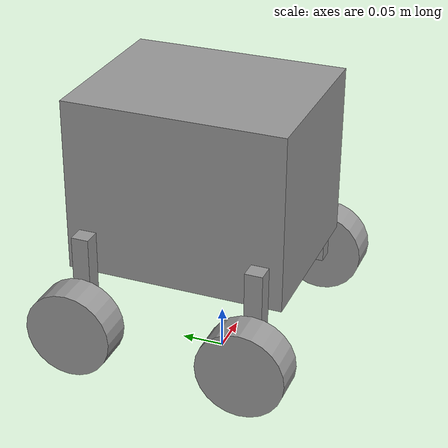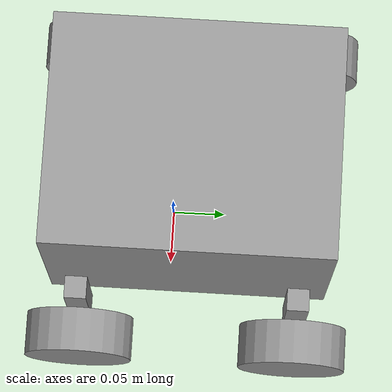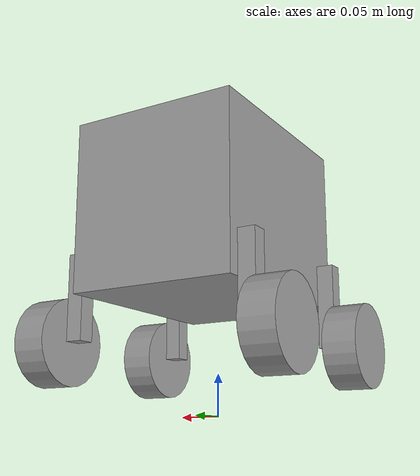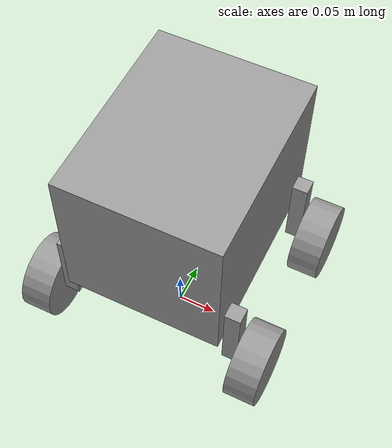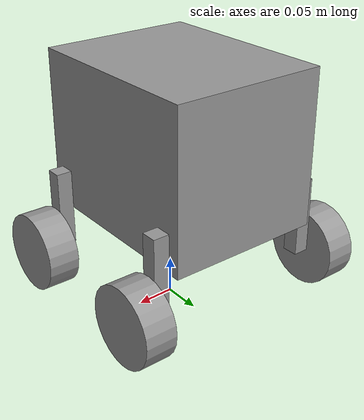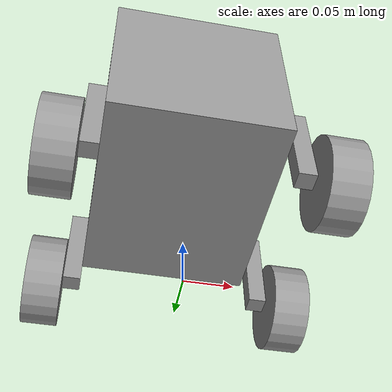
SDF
<?xml version='1.0'?>
<sdf version='1.6'>
  <model name='4wheel'>
    <link name='link_0'>
      <pose frame=''>0.111214 0.119998 0.131111 0 -0 0</pose>
      <inertial>
        <mass>1</mass>
        <inertia>
          <ixx>0.166667</ixx>
          <ixy>0</ixy>
          <ixz>0</ixz>
          <iyy>0.166667</iyy>
          <iyz>0</iyz>
          <izz>0.166667</izz>
        </inertia>
        <pose frame=''>0 0 0 0 -0 0</pose>
      </inertial>
      <gravity>1</gravity>
      <self_collide>0</self_collide>
      <kinematic>0</kinematic>
      <visual name='visual'>
        <pose frame=''>0 0 0 0 -0 0</pose>
        <geometry>
          <box>
            <size>0.02 0.02 0.1</size>
          </box>
        </geometry>
        <material>
          <lighting>1</lighting>
          <script>
            <uri>file://media/materials/scripts/gazebo.material</uri>
            <name>Gazebo/Grey</name>
          </script>
          <shader type='pixel'>
            <normal_map>__default__</normal_map>
          </shader>
          <ambient>0.3 0.3 0.3 1</ambient>
          <diffuse>0.7 0.7 0.7 1</diffuse>
          <specular>0.01 0.01 0.01 1</specular>
          <emissive>0 0 0 1</emissive>
        </material>
        <transparency>0</transparency>
        <cast_shadows>1</cast_shadows>
      </visual>
      <collision name='collision'>
        <laser_retro>0</laser_retro>
        <max_contacts>10</max_contacts>
        <pose frame=''>0 0 0 0 -0 0</pose>
        <geometry>
          <box>
            <size>0.02 0.02 0.1</size>
          </box>
        </geometry>
        <surface>
          <friction>
            <ode>
              <mu>1</mu>
              <mu2>1</mu2>
              <fdir1>0 0 0</fdir1>
              <slip1>0</slip1>
              <slip2>0</slip2>
            </ode>
            <torsional>
              <coefficient>1</coefficient>
              <patch_radius>0</patch_radius>
              <surface_radius>0</surface_radius>
              <use_patch_radius>1</use_patch_radius>
              <ode>
                <slip>0</slip>
              </ode>
            </torsional>
          </friction>
          <bounce>
            <restitution_coefficient>0</restitution_coefficient>
            <threshold>1e+06</threshold>
          </bounce>
          <contact>
            <collide_without_contact>0</collide_without_contact>
            <collide_without_contact_bitmask>1</collide_without_contact_bitmask>
            <collide_bitmask>1</collide_bitmask>
            <ode>
              <soft_cfm>0</soft_cfm>
              <soft_erp>0.2</soft_erp>
              <kp>1e+13</kp>
              <kd>1</kd>
              <max_vel>0.01</max_vel>
              <min_depth>0</min_depth>
            </ode>
            <bullet>
              <split_impulse>1</split_impulse>
              <split_impulse_penetration_threshold>-0.01</split_impulse_penetration_threshold>
              <soft_cfm>0</soft_cfm>
              <soft_erp>0.2</soft_erp>
              <kp>1e+13</kp>
              <kd>1</kd>
            </bullet>
          </contact>
        </surface>
      </collision>
    </link>
    <link name='link_0_clone'>
      <pose frame=''>0.111214 -0.080002 0.131111 0 -0 0</pose>
      <inertial>
        <mass>1</mass>
        <inertia>
          <ixx>0.166667</ixx>
          <ixy>0</ixy>
          <ixz>0</ixz>
          <iyy>0.166667</iyy>
          <iyz>0</iyz>
          <izz>0.166667</izz>
        </inertia>
        <pose frame=''>0.1 -0.1 0.1 0 -0 0</pose>
      </inertial>
      <self_collide>0</self_collide>
      <kinematic>0</kinematic>
      <gravity>1</gravity>
      <visual name='visual'>
        <pose frame=''>0 0 0 0 -0 0</pose>
        <geometry>
          <box>
            <size>0.02 0.02 0.1</size>
          </box>
        </geometry>
        <material>
          <lighting>1</lighting>
          <script>
            <uri>file://media/materials/scripts/gazebo.material</uri>
            <name>Gazebo/Grey</name>
          </script>
          <shader type='pixel'>
            <normal_map>__default__</normal_map>
          </shader>
          <ambient>0.3 0.3 0.3 1</ambient>
          <diffuse>0.7 0.7 0.7 1</diffuse>
          <specular>0.01 0.01 0.01 1</specular>
          <emissive>0 0 0 1</emissive>
        </material>
        <transparency>0</transparency>
        <cast_shadows>1</cast_shadows>
      </visual>
      <collision name='collision'>
        <laser_retro>0</laser_retro>
        <max_contacts>10</max_contacts>
        <pose frame=''>0 0 0 0 -0 0</pose>
        <geometry>
          <box>
            <size>0.02 0.02 0.1</size>
          </box>
        </geometry>
        <surface>
          <friction>
            <ode>
              <mu>1</mu>
              <mu2>1</mu2>
              <fdir1>0 0 0</fdir1>
              <slip1>0</slip1>
              <slip2>0</slip2>
            </ode>
            <torsional>
              <coefficient>1</coefficient>
              <patch_radius>0</patch_radius>
              <surface_radius>0</surface_radius>
              <use_patch_radius>1</use_patch_radius>
              <ode>
                <slip>0</slip>
              </ode>
            </torsional>
          </friction>
          <bounce>
            <restitution_coefficient>0</restitution_coefficient>
            <threshold>1e+06</threshold>
          </bounce>
          <contact>
            <collide_without_contact>0</collide_without_contact>
            <collide_without_contact_bitmask>1</collide_without_contact_bitmask>
            <collide_bitmask>1</collide_bitmask>
            <ode>
              <soft_cfm>0</soft_cfm>
              <soft_erp>0.2</soft_erp>
              <kp>1e+13</kp>
              <kd>1</kd>
              <max_vel>0.01</max_vel>
              <min_depth>0</min_depth>
            </ode>
            <bullet>
              <split_impulse>1</split_impulse>
              <split_impulse_penetration_threshold>-0.01</split_impulse_penetration_threshold>
              <soft_cfm>0</soft_cfm>
              <soft_erp>0.2</soft_erp>
              <kp>1e+13</kp>
              <kd>1</kd>
            </bullet>
          </contact>
        </surface>
      </collision>
    </link>
    <link name='link_0_clone_0'>
      <pose frame=''>-0.108786 0.119998 0.131111 0 -0 0</pose>
      <inertial>
        <mass>1</mass>
        <inertia>
          <ixx>0.166667</ixx>
          <ixy>0</ixy>
          <ixz>0</ixz>
          <iyy>0.166667</iyy>
          <iyz>0</iyz>
          <izz>0.166667</izz>
        </inertia>
        <pose frame=''>0 0 0 0 -0 0</pose>
      </inertial>
      <self_collide>0</self_collide>
      <kinematic>0</kinematic>
      <gravity>1</gravity>
      <visual name='visual'>
        <pose frame=''>0 0 0 0 -0 0</pose>
        <geometry>
          <box>
            <size>0.02 0.02 0.1</size>
          </box>
        </geometry>
        <material>
          <lighting>1</lighting>
          <script>
            <uri>file://media/materials/scripts/gazebo.material</uri>
            <name>Gazebo/Grey</name>
          </script>
          <shader type='pixel'>
            <normal_map>__default__</normal_map>
          </shader>
          <ambient>0.3 0.3 0.3 1</ambient>
          <diffuse>0.7 0.7 0.7 1</diffuse>
          <specular>0.01 0.01 0.01 1</specular>
          <emissive>0 0 0 1</emissive>
        </material>
        <transparency>0</transparency>
        <cast_shadows>1</cast_shadows>
      </visual>
      <collision name='collision'>
        <laser_retro>0</laser_retro>
        <max_contacts>10</max_contacts>
        <pose frame=''>0 0 0 0 -0 0</pose>
        <geometry>
          <box>
            <size>0.02 0.02 0.1</size>
          </box>
        </geometry>
        <surface>
          <friction>
            <ode>
              <mu>1</mu>
              <mu2>1</mu2>
              <fdir1>0 0 0</fdir1>
              <slip1>0</slip1>
              <slip2>0</slip2>
            </ode>
            <torsional>
              <coefficient>1</coefficient>
              <patch_radius>0</patch_radius>
              <surface_radius>0</surface_radius>
              <use_patch_radius>1</use_patch_radius>
              <ode>
                <slip>0</slip>
              </ode>
            </torsional>
          </friction>
          <bounce>
            <restitution_coefficient>0</restitution_coefficient>
            <threshold>1e+06</threshold>
          </bounce>
          <contact>
            <collide_without_contact>0</collide_without_contact>
            <collide_without_contact_bitmask>1</collide_without_contact_bitmask>
            <collide_bitmask>1</collide_bitmask>
            <ode>
              <soft_cfm>0</soft_cfm>
              <soft_erp>0.2</soft_erp>
              <kp>1e+13</kp>
              <kd>1</kd>
              <max_vel>0.01</max_vel>
              <min_depth>0</min_depth>
            </ode>
            <bullet>
              <split_impulse>1</split_impulse>
              <split_impulse_penetration_threshold>-0.01</split_impulse_penetration_threshold>
              <soft_cfm>0</soft_cfm>
              <soft_erp>0.2</soft_erp>
              <kp>1e+13</kp>
              <kd>1</kd>
            </bullet>
          </contact>
        </surface>
      </collision>
    </link>
    <link name='link_0_clone_1'>
      <pose frame=''>-0.108786 -0.080002 0.131111 0 -0 0</pose>
      <inertial>
        <mass>1</mass>
        <inertia>
          <ixx>0.166667</ixx>
          <ixy>0</ixy>
          <ixz>0</ixz>
          <iyy>0.166667</iyy>
          <iyz>0</iyz>
          <izz>0.166667</izz>
        </inertia>
        <pose frame=''>0 0 0 0 -0 0</pose>
      </inertial>
      <self_collide>0</self_collide>
      <kinematic>0</kinematic>
      <gravity>1</gravity>
      <visual name='visual'>
        <pose frame=''>0 0 0 0 -0 0</pose>
        <geometry>
          <box>
            <size>0.02 0.02 0.1</size>
          </box>
        </geometry>
        <material>
          <lighting>1</lighting>
          <script>
            <uri>file://media/materials/scripts/gazebo.material</uri>
            <name>Gazebo/Grey</name>
          </script>
          <shader type='pixel'>
            <normal_map>__default__</normal_map>
          </shader>
          <ambient>0.3 0.3 0.3 1</ambient>
          <diffuse>0.7 0.7 0.7 1</diffuse>
          <specular>0.01 0.01 0.01 1</specular>
          <emissive>0 0 0 1</emissive>
        </material>
        <transparency>0</transparency>
        <cast_shadows>1</cast_shadows>
      </visual>
      <collision name='collision'>
        <laser_retro>0</laser_retro>
        <max_contacts>10</max_contacts>
        <pose frame=''>0 0 0 0 -0 0</pose>
        <geometry>
          <box>
            <size>0.02 0.02 0.1</size>
          </box>
        </geometry>
        <surface>
          <friction>
            <ode>
              <mu>1</mu>
              <mu2>1</mu2>
              <fdir1>0 0 0</fdir1>
              <slip1>0</slip1>
              <slip2>0</slip2>
            </ode>
            <torsional>
              <coefficient>1</coefficient>
              <patch_radius>0</patch_radius>
              <surface_radius>0</surface_radius>
              <use_patch_radius>1</use_patch_radius>
              <ode>
                <slip>0</slip>
              </ode>
            </torsional>
          </friction>
          <bounce>
            <restitution_coefficient>0</restitution_coefficient>
            <threshold>1e+06</threshold>
          </bounce>
          <contact>
            <collide_without_contact>0</collide_without_contact>
            <collide_without_contact_bitmask>1</collide_without_contact_bitmask>
            <collide_bitmask>1</collide_bitmask>
            <ode>
              <soft_cfm>0</soft_cfm>
              <soft_erp>0.2</soft_erp>
              <kp>1e+13</kp>
              <kd>1</kd>
              <max_vel>0.01</max_vel>
              <min_depth>0</min_depth>
            </ode>
            <bullet>
              <split_impulse>1</split_impulse>
              <split_impulse_penetration_threshold>-0.01</split_impulse_penetration_threshold>
              <soft_cfm>0</soft_cfm>
              <soft_erp>0.2</soft_erp>
              <kp>1e+13</kp>
              <kd>1</kd>
            </bullet>
          </contact>
        </surface>
      </collision>
    </link>
    <link name='link_1'>
      <pose frame=''>0.001214 0.019998 0.231111 0 -0 0</pose>
      <inertial>
        <mass>1</mass>
        <inertia>
          <ixx>0.166667</ixx>
          <ixy>0</ixy>
          <ixz>0</ixz>
          <iyy>0.166667</iyy>
          <iyz>0</iyz>
          <izz>0.166667</izz>
        </inertia>
        <pose frame=''>0 0 0 0 -0 0</pose>
      </inertial>
      <gravity>1</gravity>
      <self_collide>0</self_collide>
      <kinematic>0</kinematic>
      <visual name='visual'>
        <pose frame=''>0 0 0 0 -0 0</pose>
        <geometry>
          <box>
            <size>0.2 0.25 0.2</size>
          </box>
        </geometry>
        <material>
          <lighting>1</lighting>
          <script>
            <uri>file://media/materials/scripts/gazebo.material</uri>
            <name>Gazebo/Grey</name>
          </script>
          <shader type='pixel'>
            <normal_map>__default__</normal_map>
          </shader>
          <ambient>0.3 0.3 0.3 1</ambient>
          <diffuse>0.7 0.7 0.7 1</diffuse>
          <specular>0.01 0.01 0.01 1</specular>
          <emissive>0 0 0 1</emissive>
        </material>
        <transparency>0</transparency>
        <cast_shadows>1</cast_shadows>
      </visual>
      <collision name='collision'>
        <laser_retro>0</laser_retro>
        <max_contacts>10</max_contacts>
        <pose frame=''>0 0 0 0 -0 0</pose>
        <geometry>
          <box>
            <size>0.2 0.25 0.2</size>
          </box>
        </geometry>
        <surface>
          <friction>
            <ode>
              <mu>1</mu>
              <mu2>1</mu2>
              <fdir1>0 0 0</fdir1>
              <slip1>0</slip1>
              <slip2>0</slip2>
            </ode>
            <torsional>
              <coefficient>1</coefficient>
              <patch_radius>0</patch_radius>
              <surface_radius>0</surface_radius>
              <use_patch_radius>1</use_patch_radius>
              <ode>
                <slip>0</slip>
              </ode>
            </torsional>
          </friction>
          <bounce>
            <restitution_coefficient>0</restitution_coefficient>
            <threshold>1e+06</threshold>
          </bounce>
          <contact>
            <collide_without_contact>0</collide_without_contact>
            <collide_without_contact_bitmask>1</collide_without_contact_bitmask>
            <collide_bitmask>1</collide_bitmask>
            <ode>
              <soft_cfm>0</soft_cfm>
              <soft_erp>0.2</soft_erp>
              <kp>1e+13</kp>
              <kd>1</kd>
              <max_vel>0.01</max_vel>
              <min_depth>0</min_depth>
            </ode>
            <bullet>
              <split_impulse>1</split_impulse>
              <split_impulse_penetration_threshold>-0.01</split_impulse_penetration_threshold>
              <soft_cfm>0</soft_cfm>
              <soft_erp>0.2</soft_erp>
              <kp>1e+13</kp>
              <kd>1</kd>
            </bullet>
          </contact>
        </surface>
      </collision>
    </link>
    <link name='link_3'>
      <pose frame=''>0.141214 0.119998 0.081111 1.5707 0 1.5707</pose>
      <inertial>
        <mass>1</mass>
        <inertia>
          <ixx>0.145833</ixx>
          <ixy>0</ixy>
          <ixz>0</ixz>
          <iyy>0.145833</iyy>
          <iyz>0</iyz>
          <izz>0.125</izz>
        </inertia>
        <pose frame=''>0 0 0 0 -0 0</pose>
      </inertial>
      <gravity>1</gravity>
      <self_collide>0</self_collide>
      <kinematic>0</kinematic>
      <visual name='visual'>
        <pose frame=''>0 0 0 0 -0 0</pose>
        <geometry>
          <cylinder>
            <radius>0.05</radius>
            <length>0.04</length>
          </cylinder>
        </geometry>
        <material>
          <lighting>1</lighting>
          <script>
            <uri>file://media/materials/scripts/gazebo.material</uri>
            <name>Gazebo/Grey</name>
          </script>
          <shader type='pixel'>
            <normal_map>__default__</normal_map>
          </shader>
          <ambient>0.3 0.3 0.3 1</ambient>
          <diffuse>0.7 0.7 0.7 1</diffuse>
          <specular>0.01 0.01 0.01 1</specular>
          <emissive>0 0 0 1</emissive>
        </material>
        <transparency>0</transparency>
        <cast_shadows>1</cast_shadows>
      </visual>
      <collision name='collision'>
        <laser_retro>0</laser_retro>
        <max_contacts>10</max_contacts>
        <pose frame=''>0 0 0 0 -0 0</pose>
        <geometry>
          <cylinder>
            <radius>0.05</radius>
            <length>0.04</length>
          </cylinder>
        </geometry>
        <surface>
          <friction>
            <ode>
              <mu>1</mu>
              <mu2>1</mu2>
              <fdir1>0 0 0</fdir1>
              <slip1>0</slip1>
              <slip2>0</slip2>
            </ode>
            <torsional>
              <coefficient>1</coefficient>
              <patch_radius>0</patch_radius>
              <surface_radius>0</surface_radius>
              <use_patch_radius>1</use_patch_radius>
              <ode>
                <slip>0</slip>
              </ode>
            </torsional>
          </friction>
          <bounce>
            <restitution_coefficient>0</restitution_coefficient>
            <threshold>1e+06</threshold>
          </bounce>
          <contact>
            <collide_without_contact>0</collide_without_contact>
            <collide_without_contact_bitmask>1</collide_without_contact_bitmask>
            <collide_bitmask>1</collide_bitmask>
            <ode>
              <soft_cfm>0</soft_cfm>
              <soft_erp>0.2</soft_erp>
              <kp>1e+13</kp>
              <kd>1</kd>
              <max_vel>0.01</max_vel>
              <min_depth>0</min_depth>
            </ode>
            <bullet>
              <split_impulse>1</split_impulse>
              <split_impulse_penetration_threshold>-0.01</split_impulse_penetration_threshold>
              <soft_cfm>0</soft_cfm>
              <soft_erp>0.2</soft_erp>
              <kp>1e+13</kp>
              <kd>1</kd>
            </bullet>
          </contact>
        </surface>
      </collision>
    </link>
    <link name='link_3_clone'>
      <pose frame=''>0.141223 -0.080002 0.081111 1.5707 0 1.5707</pose>
      <inertial>
        <mass>1</mass>
        <inertia>
          <ixx>0.145833</ixx>
          <ixy>0</ixy>
          <ixz>0</ixz>
          <iyy>0.145833</iyy>
          <iyz>0</iyz>
          <izz>0.125</izz>
        </inertia>
        <pose frame=''>0 0 0 0 -0 0</pose>
      </inertial>
      <self_collide>0</self_collide>
      <kinematic>0</kinematic>
      <gravity>1</gravity>
      <visual name='visual'>
        <pose frame=''>0 0 0 0 -0 0</pose>
        <geometry>
          <cylinder>
            <radius>0.05</radius>
            <length>0.04</length>
          </cylinder>
        </geometry>
        <material>
          <lighting>1</lighting>
          <script>
            <uri>file://media/materials/scripts/gazebo.material</uri>
            <name>Gazebo/Grey</name>
          </script>
          <shader type='pixel'>
            <normal_map>__default__</normal_map>
          </shader>
          <ambient>0.3 0.3 0.3 1</ambient>
          <diffuse>0.7 0.7 0.7 1</diffuse>
          <specular>0.01 0.01 0.01 1</specular>
          <emissive>0 0 0 1</emissive>
        </material>
        <transparency>0</transparency>
        <cast_shadows>1</cast_shadows>
      </visual>
      <collision name='collision'>
        <laser_retro>0</laser_retro>
        <max_contacts>10</max_contacts>
        <pose frame=''>0 0 0 0 -0 0</pose>
        <geometry>
          <cylinder>
            <radius>0.05</radius>
            <length>0.04</length>
          </cylinder>
        </geometry>
        <surface>
          <friction>
            <ode>
              <mu>1</mu>
              <mu2>1</mu2>
              <fdir1>0 0 0</fdir1>
              <slip1>0</slip1>
              <slip2>0</slip2>
            </ode>
            <torsional>
              <coefficient>1</coefficient>
              <patch_radius>0</patch_radius>
              <surface_radius>0</surface_radius>
              <use_patch_radius>1</use_patch_radius>
              <ode>
                <slip>0</slip>
              </ode>
            </torsional>
          </friction>
          <bounce>
            <restitution_coefficient>0</restitution_coefficient>
            <threshold>1e+06</threshold>
          </bounce>
          <contact>
            <collide_without_contact>0</collide_without_contact>
            <collide_without_contact_bitmask>1</collide_without_contact_bitmask>
            <collide_bitmask>1</collide_bitmask>
            <ode>
              <soft_cfm>0</soft_cfm>
              <soft_erp>0.2</soft_erp>
              <kp>1e+13</kp>
              <kd>1</kd>
              <max_vel>0.01</max_vel>
              <min_depth>0</min_depth>
            </ode>
            <bullet>
              <split_impulse>1</split_impulse>
              <split_impulse_penetration_threshold>-0.01</split_impulse_penetration_threshold>
              <soft_cfm>0</soft_cfm>
              <soft_erp>0.2</soft_erp>
              <kp>1e+13</kp>
              <kd>1</kd>
            </bullet>
          </contact>
        </surface>
      </collision>
    </link>
    <link name='link_3_clone_0'>
      <pose frame=''>-0.138796 0.119998 0.081111 1.5707 0 1.5707</pose>
      <inertial>
        <mass>1</mass>
        <inertia>
          <ixx>0.145833</ixx>
          <ixy>0</ixy>
          <ixz>0</ixz>
          <iyy>0.145833</iyy>
          <iyz>0</iyz>
          <izz>0.125</izz>
        </inertia>
        <pose frame=''>0 0 0 0 -0 0</pose>
      </inertial>
      <self_collide>0</self_collide>
      <kinematic>0</kinematic>
      <gravity>1</gravity>
      <visual name='visual'>
        <pose frame=''>0 0 0 0 -0 0</pose>
        <geometry>
          <cylinder>
            <radius>0.05</radius>
            <length>0.04</length>
          </cylinder>
        </geometry>
        <material>
          <lighting>1</lighting>
          <script>
            <uri>file://media/materials/scripts/gazebo.material</uri>
            <name>Gazebo/Grey</name>
          </script>
          <shader type='pixel'>
            <normal_map>__default__</normal_map>
          </shader>
          <ambient>0.3 0.3 0.3 1</ambient>
          <diffuse>0.7 0.7 0.7 1</diffuse>
          <specular>0.01 0.01 0.01 1</specular>
          <emissive>0 0 0 1</emissive>
        </material>
        <transparency>0</transparency>
        <cast_shadows>1</cast_shadows>
      </visual>
      <collision name='collision'>
        <laser_retro>0</laser_retro>
        <max_contacts>10</max_contacts>
        <pose frame=''>0 0 0 0 -0 0</pose>
        <geometry>
          <cylinder>
            <radius>0.05</radius>
            <length>0.04</length>
          </cylinder>
        </geometry>
        <surface>
          <friction>
            <ode>
              <mu>1</mu>
              <mu2>1</mu2>
              <fdir1>0 0 0</fdir1>
              <slip1>0</slip1>
              <slip2>0</slip2>
            </ode>
            <torsional>
              <coefficient>1</coefficient>
              <patch_radius>0</patch_radius>
              <surface_radius>0</surface_radius>
              <use_patch_radius>1</use_patch_radius>
              <ode>
                <slip>0</slip>
              </ode>
            </torsional>
          </friction>
          <bounce>
            <restitution_coefficient>0</restitution_coefficient>
            <threshold>1e+06</threshold>
          </bounce>
          <contact>
            <collide_without_contact>0</collide_without_contact>
            <collide_without_contact_bitmask>1</collide_without_contact_bitmask>
            <collide_bitmask>1</collide_bitmask>
            <ode>
              <soft_cfm>0</soft_cfm>
              <soft_erp>0.2</soft_erp>
              <kp>1e+13</kp>
              <kd>1</kd>
              <max_vel>0.01</max_vel>
              <min_depth>0</min_depth>
            </ode>
            <bullet>
              <split_impulse>1</split_impulse>
              <split_impulse_penetration_threshold>-0.01</split_impulse_penetration_threshold>
              <soft_cfm>0</soft_cfm>
              <soft_erp>0.2</soft_erp>
              <kp>1e+13</kp>
              <kd>1</kd>
            </bullet>
          </contact>
        </surface>
      </collision>
    </link>
    <link name='link_3_clone_1'>
      <pose frame=''>-0.138796 -0.080002 0.081111 1.5707 0 1.5707</pose>
      <inertial>
        <mass>1</mass>
        <inertia>
          <ixx>0.145833</ixx>
          <ixy>0</ixy>
          <ixz>0</ixz>
          <iyy>0.145833</iyy>
          <iyz>0</iyz>
          <izz>0.125</izz>
        </inertia>
        <pose frame=''>0 0 0 0 -0 0</pose>
      </inertial>
      <self_collide>0</self_collide>
      <kinematic>0</kinematic>
      <gravity>1</gravity>
      <visual name='visual'>
        <pose frame=''>0 0 0 0 -0 0</pose>
        <geometry>
          <cylinder>
            <radius>0.05</radius>
            <length>0.04</length>
          </cylinder>
        </geometry>
        <material>
          <lighting>1</lighting>
          <script>
            <uri>file://media/materials/scripts/gazebo.material</uri>
            <name>Gazebo/Grey</name>
          </script>
          <shader type='pixel'>
            <normal_map>__default__</normal_map>
          </shader>
          <ambient>0.3 0.3 0.3 1</ambient>
          <diffuse>0.7 0.7 0.7 1</diffuse>
          <specular>0.01 0.01 0.01 1</specular>
          <emissive>0 0 0 1</emissive>
        </material>
        <transparency>0</transparency>
        <cast_shadows>1</cast_shadows>
      </visual>
      <collision name='collision'>
        <laser_retro>0</laser_retro>
        <max_contacts>10</max_contacts>
        <pose frame=''>0 0 0 0 -0 0</pose>
        <geometry>
          <cylinder>
            <radius>0.05</radius>
            <length>0.04</length>
          </cylinder>
        </geometry>
        <surface>
          <friction>
            <ode>
              <mu>1</mu>
              <mu2>1</mu2>
              <fdir1>0 0 0</fdir1>
              <slip1>0</slip1>
              <slip2>0</slip2>
            </ode>
            <torsional>
              <coefficient>1</coefficient>
              <patch_radius>0</patch_radius>
              <surface_radius>0</surface_radius>
              <use_patch_radius>1</use_patch_radius>
              <ode>
                <slip>0</slip>
              </ode>
            </torsional>
          </friction>
          <bounce>
            <restitution_coefficient>0</restitution_coefficient>
            <threshold>1e+06</threshold>
          </bounce>
          <contact>
            <collide_without_contact>0</collide_without_contact>
            <collide_without_contact_bitmask>1</collide_without_contact_bitmask>
            <collide_bitmask>1</collide_bitmask>
            <ode>
              <soft_cfm>0</soft_cfm>
              <soft_erp>0.2</soft_erp>
              <kp>1e+13</kp>
              <kd>1</kd>
              <max_vel>0.01</max_vel>
              <min_depth>0</min_depth>
            </ode>
            <bullet>
              <split_impulse>1</split_impulse>
              <split_impulse_penetration_threshold>-0.01</split_impulse_penetration_threshold>
              <soft_cfm>0</soft_cfm>
              <soft_erp>0.2</soft_erp>
              <kp>1e+13</kp>
              <kd>1</kd>
            </bullet>
          </contact>
        </surface>
      </collision>
    </link>
    <joint name='link_0_JOINT_17' type='fixed'>
      <parent>link_0</parent>
      <child>link_3</child>
      <pose frame=''>0 0 0 0 -0 0</pose>
      <physics>
        <ode>
          <limit>
            <cfm>0</cfm>
            <erp>0.2</erp>
          </limit>
          <suspension>
            <cfm>0</cfm>
            <erp>0.2</erp>
          </suspension>
        </ode>
      </physics>
    </joint>
    <joint name='link_0_clone_0_JOINT_16' type='fixed'>
      <parent>link_0_clone_0</parent>
      <child>link_3_clone_0</child>
      <pose frame=''>0 0 0 0 -0 0</pose>
      <physics>
        <ode>
          <limit>
            <cfm>0</cfm>
            <erp>0.2</erp>
          </limit>
          <suspension>
            <cfm>0</cfm>
            <erp>0.2</erp>
          </suspension>
        </ode>
      </physics>
    </joint>
    <joint name='link_0_clone_1_JOINT_15' type='fixed'>
      <parent>link_0_clone_1</parent>
      <child>link_3_clone_1</child>
      <pose frame=''>0 0 0 0 -0 0</pose>
      <physics>
        <ode>
          <limit>
            <cfm>0</cfm>
            <erp>0.2</erp>
          </limit>
          <suspension>
            <cfm>0</cfm>
            <erp>0.2</erp>
          </suspension>
        </ode>
      </physics>
    </joint>
    <joint name='link_0_clone_JOINT_11' type='revolute'>
      <parent>link_0_clone</parent>
      <child>link_3_clone</child>
      <pose frame=''>0 0 0 0 -0 0</pose>
      <axis>
        <xyz>1 0 0</xyz>
        <use_parent_model_frame>0</use_parent_model_frame>
        <limit>
          <lower>-1.79769e+308</lower>
          <upper>1.79769e+308</upper>
          <effort>-1</effort>
          <velocity>-1</velocity>
        </limit>
        <dynamics>
          <spring_reference>0</spring_reference>
          <spring_stiffness>0</spring_stiffness>
          <damping>0</damping>
        </dynamics>
      </axis>
      <physics>
        <ode>
          <limit>
            <cfm>0</cfm>
            <erp>0.2</erp>
          </limit>
          <suspension>
            <cfm>0</cfm>
            <erp>0.2</erp>
          </suspension>
        </ode>
      </physics>
    </joint>
    <joint name='link_1_JOINT_5' type='fixed'>
      <parent>link_1</parent>
      <child>link_0_clone_0</child>
      <pose frame=''>0 0 0 0 -0 0</pose>
      <physics>
        <ode>
          <limit>
            <cfm>0</cfm>
            <erp>0.2</erp>
          </limit>
          <suspension>
            <cfm>0</cfm>
            <erp>0.2</erp>
          </suspension>
        </ode>
      </physics>
    </joint>
    <joint name='link_1_JOINT_6' type='fixed'>
      <parent>link_1</parent>
      <child>link_0_clone_1</child>
      <pose frame=''>0 0 0 0 -0 0</pose>
      <physics>
        <ode>
          <limit>
            <cfm>0</cfm>
            <erp>0.2</erp>
          </limit>
          <suspension>
            <cfm>0</cfm>
            <erp>0.2</erp>
          </suspension>
        </ode>
      </physics>
    </joint>
    <joint name='link_1_JOINT_7' type='fixed'>
      <parent>link_1</parent>
      <child>link_0_clone</child>
      <pose frame=''>0 0 0 0 -0 0</pose>
      <physics>
        <ode>
          <limit>
            <cfm>0</cfm>
            <erp>0.2</erp>
          </limit>
          <suspension>
            <cfm>0</cfm>
            <erp>0.2</erp>
          </suspension>
        </ode>
      </physics>
    </joint>
    <joint name='link_1_JOINT_8' type='fixed'>
      <parent>link_1</parent>
      <child>link_0</child>
      <pose frame=''>0 0 0 0 -0 0</pose>
      <physics>
        <ode>
          <limit>
            <cfm>0</cfm>
            <erp>0.2</erp>
          </limit>
          <suspension>
            <cfm>0</cfm>
            <erp>0.2</erp>
          </suspension>
        </ode>
      </physics>
    </joint>
    <static>0</static>
    <allow_auto_disable>1</allow_auto_disable>
  </model>
</sdf>
